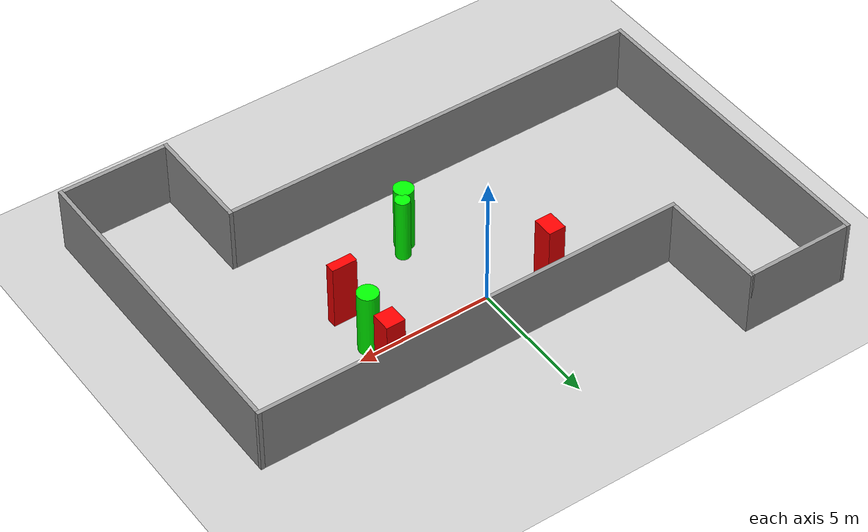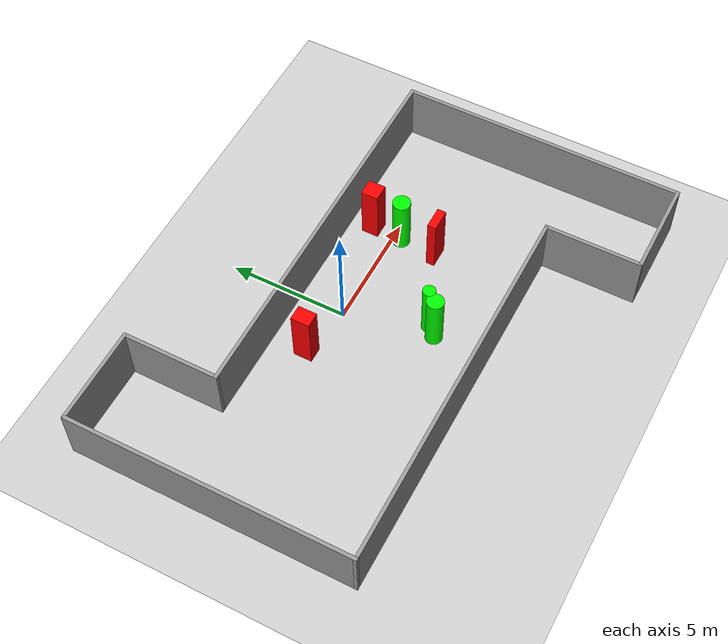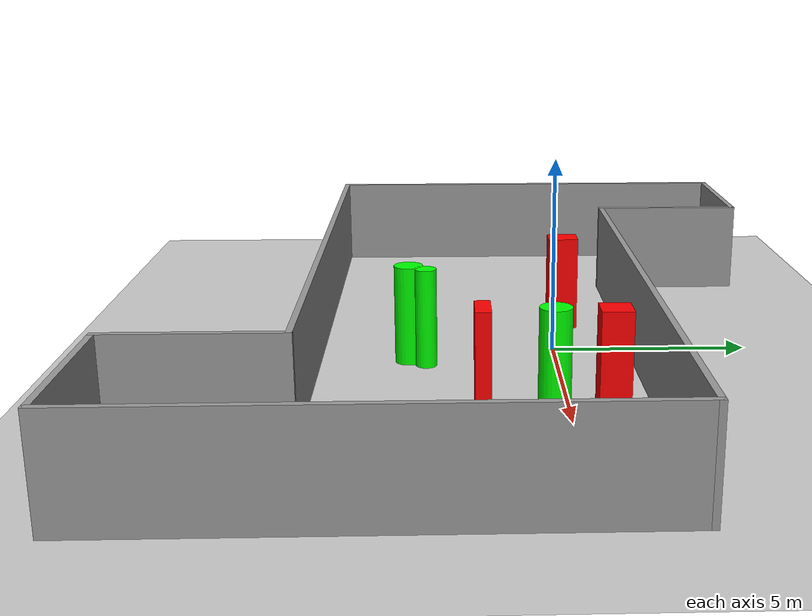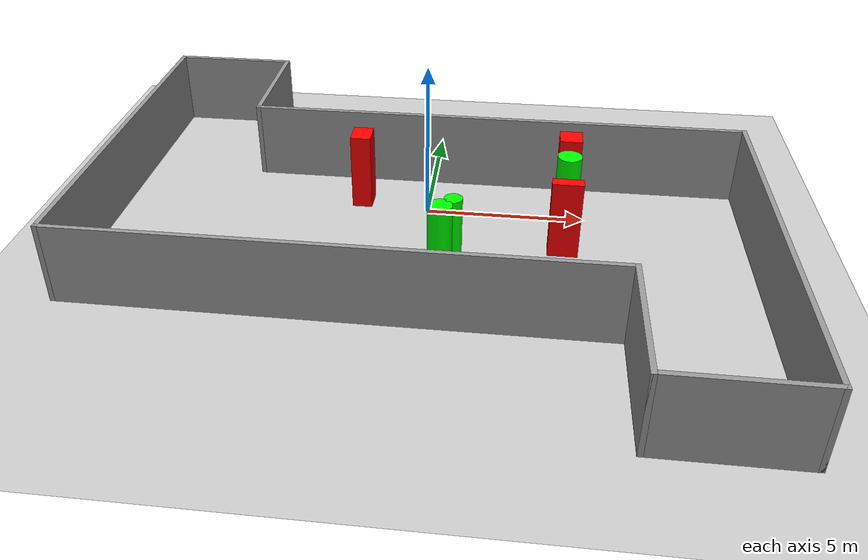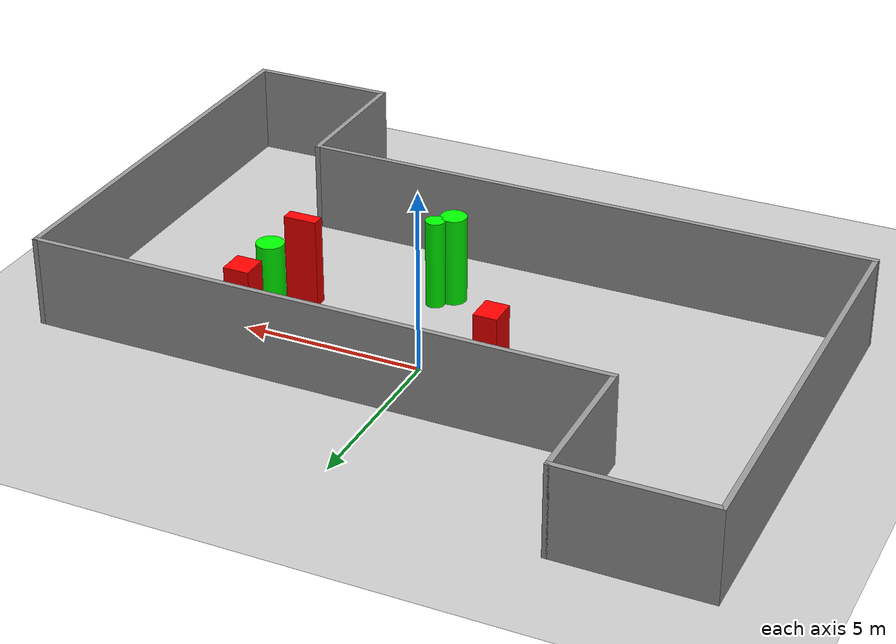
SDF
<sdf version="1.7">
 <world name="default">
  <light name="sun" type="directional">
   <pose>0 0 10 0 -0 0</pose>
   <diffuse>0.8 0.8 0.8 1</diffuse>
   <specular>0.2 0.2 0.2 1</specular>
   <attenuation>
    <range>1000</range>
    <constant>0.9</constant>
    <linear>0.01</linear>
    <quadratic>0.001</quadratic>
   </attenuation>
   <direction>-0.5 0.1 -0.9</direction>
   <spot><inner_angle>0</inner_angle><outer_angle>0</outer_angle><falloff>0</falloff></spot>
  </light>
  <model name="ground_plane">
   <static>1</static>
   <link name="link">
    <collision name="collision">
     <geometry><plane><normal>0 0 1</normal><size>100 100</size></plane></geometry>
     <surface>
      <contact><collide_bitmask>65535</collide_bitmask></contact>
      <friction><ode><mu>100</mu><mu2>50</mu2></ode></friction>
     </surface>
    </collision>
    <visual name="visual">
     <cast_shadows>0</cast_shadows>
     <geometry><plane><normal>0 0 1</normal><size>100 100</size></plane></geometry>
     <material>
      <script><uri>file://media/materials/scripts/gazebo.material</uri><name>Gazebo/Grey</name></script>
     </material>
    </visual>
   </link>
  </model>
  <gravity>0 0 -9.8</gravity>
  <magnetic_field>6e-06 2.3e-05 -4.2e-05</magnetic_field>
  <atmosphere type="adiabatic"/>
  <physics type="ode">
   <max_step_size>0.001</max_step_size>
   <real_time_factor>1</real_time_factor>
   <real_time_update_rate>1000</real_time_update_rate>
  </physics>
  <scene><ambient>0.4 0.4 0.4 1</ambient><background>0.7 0.7 0.7 1</background><shadows>1</shadows></scene>
  <spherical_coordinates>
   <surface_model>EARTH_WGS84</surface_model>
   <latitude_deg>0</latitude_deg>
   <longitude_deg>0</longitude_deg>
   <elevation>0</elevation>
   <heading_deg>0</heading_deg>
  </spherical_coordinates>
  <model name="my_base_walls">
   <link name="Wall_13">
    <collision name="Wall_13_Collision">
     <geometry><box><size>12.15 0.15 2.5</size></box></geometry>
     <pose>0 0 1.25 0 -0 0</pose>
    </collision>
    <visual name="Wall_13_Visual">
     <pose>0 0 1.25 0 -0 0</pose>
     <geometry><box><size>12.15 0.15 2.5</size></box></geometry>
     <material>
      <script><uri>file://media/materials/scripts/gazebo.material</uri><name>Gazebo/Grey</name></script>
      <ambient>1 1 1 1</ambient>
     </material>
     <meta><layer>0</layer></meta>
    </visual>
    <pose>10 -2 0 0 -0 1.5708</pose>
   </link>
   <link name="Wall_15">
    <collision name="Wall_15_Collision">
     <geometry><box><size>16.15 0.15 2.5</size></box></geometry>
     <pose>0 0 1.25 0 -0 0</pose>
    </collision>
    <visual name="Wall_15_Visual">
     <pose>0 0 1.25 0 -0 0</pose>
     <geometry><box><size>16.15 0.15 2.5</size></box></geometry>
     <material>
      <script><uri>file://media/materials/scripts/gazebo.material</uri><name>Gazebo/Grey</name></script>
      <ambient>1 1 1 1</ambient>
     </material>
     <meta><layer>0</layer></meta>
    </visual>
    <pose>2 4 0 0 -0 3.14159</pose>
   </link>
   <link name="Wall_17">
    <collision name="Wall_17_Collision">
     <geometry><box><size>4.15 0.15 2.5</size></box></geometry>
     <pose>0 0 1.25 0 -0 0</pose>
    </collision>
    <visual name="Wall_17_Visual">
     <pose>0 0 1.25 0 -0 0</pose>
     <geometry><box><size>4.15 0.15 2.5</size></box></geometry>
     <material>
      <script><uri>file://media/materials/scripts/gazebo.material</uri><name>Gazebo/Grey</name></script>
      <ambient>1 1 1 1</ambient>
     </material>
     <meta><layer>0</layer></meta>
    </visual>
    <pose>6 -6 0 0 -0 -1.5708</pose>
   </link>
   <link name="Wall_19">
    <collision name="Wall_19_Collision">
     <geometry><box><size>12.15 0.15 2.5</size></box></geometry>
     <pose>0 0 1.25 0 -0 0</pose>
    </collision>
    <visual name="Wall_19_Visual">
     <pose>0 0 1.25 0 -0 0</pose>
     <geometry><box><size>12.15 0.15 2.5</size></box></geometry>
     <material>
      <script><uri>file://media/materials/scripts/gazebo.material</uri><name>Gazebo/Grey</name></script>
      <ambient>1 1 1 1</ambient>
     </material>
     <meta><layer>0</layer></meta>
    </visual>
    <pose>-10 2 0 0 -0 1.5708</pose>
   </link>
   <link name="Wall_21">
    <collision name="Wall_21_Collision">
     <geometry><box><size>4.15 0.15 2.5</size></box></geometry>
     <pose>0 0 1.25 0 -0 0</pose>
    </collision>
    <visual name="Wall_21_Visual">
     <pose>0 0 1.25 0 -0 0</pose>
     <geometry><box><size>4.15 0.15 2.5</size></box></geometry>
     <material>
      <script><uri>file://media/materials/scripts/gazebo.material</uri><name>Gazebo/Grey</name></script>
      <ambient>1 1 1 1</ambient>
     </material>
     <meta><layer>0</layer></meta>
    </visual>
    <pose>-8 8 0 0 -0 0</pose>
   </link>
   <link name="Wall_23">
    <collision name="Wall_23_Collision">
     <geometry><box><size>4.15 0.15 2.5</size></box></geometry>
     <pose>0 0 1.25 0 -0 0</pose>
    </collision>
    <visual name="Wall_23_Visual">
     <pose>0 0 1.25 0 -0 0</pose>
     <geometry><box><size>4.15 0.15 2.5</size></box></geometry>
     <material>
      <script><uri>file://media/materials/scripts/gazebo.material</uri><name>Gazebo/Grey</name></script>
      <ambient>1 1 1 1</ambient>
     </material>
     <meta><layer>0</layer></meta>
    </visual>
    <pose>-6 6 0 0 -0 -1.5708</pose>
   </link>
   <link name="Wall_25">
    <collision name="Wall_25_Collision">
     <geometry><box><size>4.15 0.15 2.5</size></box></geometry>
     <pose>0 0 1.25 0 -0 0</pose>
    </collision>
    <visual name="Wall_25_Visual">
     <pose>0 0 1.25 0 -0 0</pose>
     <geometry><box><size>4.15 0.15 2.5</size></box></geometry>
     <material>
      <script><uri>file://media/materials/scripts/gazebo.material</uri><name>Gazebo/Grey</name></script>
      <ambient>1 1 1 1</ambient>
     </material>
     <meta><layer>0</layer></meta>
    </visual>
    <pose>8 -8 0 0 -0 0</pose>
   </link>
   <link name="Wall_9">
    <collision name="Wall_9_Collision">
     <geometry><box><size>16.15 0.15 2.5</size></box></geometry>
     <pose>0 0 1.25 0 -0 0</pose>
    </collision>
    <visual name="Wall_9_Visual">
     <pose>0 0 1.25 0 -0 0</pose>
     <geometry><box><size>16.15 0.15 2.5</size></box></geometry>
     <material>
      <script><uri>file://media/materials/scripts/gazebo.material</uri><name>Gazebo/Grey</name></script>
      <ambient>1 1 1 1</ambient>
     </material>
     <meta><layer>0</layer></meta>
    </visual>
    <pose>-2 -4 0 0 -0 3.14159</pose>
   </link>
   <static>1</static>
   <pose>-0 -2 0 0 -0 0</pose>
  </model>
  <model name="cylinder1">
   <static>1</static>
   <link name="link">
    <inertial>
     <mass>1</mass>
     <inertia><ixx>0.5</ixx><ixy>0</ixy><ixz>0</ixz><iyy>0.5</iyy><iyz>0</iyz><izz>1</izz></inertia>
    </inertial>
    <collision name="collision">
     <geometry><cylinder><radius>0.26686412401197857</radius><length>2.5</length></cylinder></geometry>
    </collision>
    <visual name="visual">
     <geometry><cylinder><radius>0.26686412401197857</radius><length>2.5</length></cylinder></geometry>
     <material>
      <ambient>0 1 0 1</ambient>
      <diffuse>0 1 0 1</diffuse>
      <specular>0.1 0.1 0.1 1</specular>
      <emissive>0 0 0 0</emissive>
     </material>
    </visual>
   </link>
   <pose>1.0806278983044288 -3.2635283136129773 1.25 0 0 0</pose>
  </model>
  <model name="cylinder2">
   <static>1</static>
   <link name="link">
    <inertial>
     <mass>1</mass>
     <inertia><ixx>0.5</ixx><ixy>0</ixy><ixz>0</ixz><iyy>0.5</iyy><iyz>0</iyz><izz>1</izz></inertia>
    </inertial>
    <collision name="collision">
     <geometry><cylinder><radius>0.3590106706994831</radius><length>2.5</length></cylinder></geometry>
    </collision>
    <visual name="visual">
     <geometry><cylinder><radius>0.3590106706994831</radius><length>2.5</length></cylinder></geometry>
     <material>
      <ambient>0 1 0 1</ambient>
      <diffuse>0 1 0 1</diffuse>
      <specular>0.1 0.1 0.1 1</specular>
      <emissive>0 0 0 0</emissive>
     </material>
    </visual>
   </link>
   <pose>0.7406492253552797 -3.6945541478052695 1.25 0 0 0</pose>
  </model>
  <model name="cylinder3">
   <static>1</static>
   <link name="link">
    <inertial>
     <mass>1</mass>
     <inertia><ixx>0.5</ixx><ixy>0</ixy><ixz>0</ixz><iyy>0.5</iyy><iyz>0</iyz><izz>1</izz></inertia>
    </inertial>
    <collision name="collision">
     <geometry><cylinder><radius>0.3762498307123102</radius><length>2.5</length></cylinder></geometry>
    </collision>
    <visual name="visual">
     <geometry><cylinder><radius>0.3762498307123102</radius><length>2.5</length></cylinder></geometry>
     <material>
      <ambient>0 1 0 1</ambient>
      <diffuse>0 1 0 1</diffuse>
      <specular>0.1 0.1 0.1 1</specular>
      <emissive>0 0 0 0</emissive>
     </material>
    </visual>
   </link>
   <pose>4.412027882542027 -0.3608988427129498 1.25 0 0 0</pose>
  </model>
  <model name="box1">
   <static>1</static>
   <link name="link">
    <inertial>
     <mass>1</mass>
     <inertia><ixx>0.083</ixx><ixy>0</ixy><ixz>0</ixz><iyy>0.083</iyy><iyz>0</iyz><izz>0.083</izz></inertia>
    </inertial>
    <collision name="collision">
     <geometry><box><size>0.9274581331035641 0.3653764281853498 2.5</size></box></geometry>
    </collision>
    <visual name="visual">
     <geometry><box><size>0.9274581331035641 0.3653764281853498 2.5</size></box></geometry>
     <material>
      <ambient>1 0 0 1</ambient>
      <diffuse>1 0 0 1</diffuse>
      <specular>0.1 0.1 0.1 1</specular>
      <emissive>0 0 0 0</emissive>
     </material>
    </visual>
    <sensor name="my_contact" type="contact">
     <contact><collision>box_collision</collision><topic>__default_topic__</topic></contact>
    </sensor>
   </link>
   <pose>4.330740098375177 -1.9692529804404213 1.25 0 0 0</pose>
  </model>
  <model name="box2">
   <static>1</static>
   <link name="link">
    <inertial>
     <mass>1</mass>
     <inertia><ixx>0.083</ixx><ixy>0</ixy><ixz>0</ixz><iyy>0.083</iyy><iyz>0</iyz><izz>0.083</izz></inertia>
    </inertial>
    <collision name="collision">
     <geometry><box><size>0.7080162529485836 0.7248115705420441 2.5</size></box></geometry>
    </collision>
    <visual name="visual">
     <geometry><box><size>0.7080162529485836 0.7248115705420441 2.5</size></box></geometry>
     <material>
      <ambient>1 0 0 1</ambient>
      <diffuse>1 0 0 1</diffuse>
      <specular>0.1 0.1 0.1 1</specular>
      <emissive>0 0 0 0</emissive>
     </material>
    </visual>
    <sensor name="my_contact" type="contact">
     <contact><collision>box_collision</collision><topic>__default_topic__</topic></contact>
    </sensor>
   </link>
   <pose>4.4757967523663 0.9561468722158466 1.25 0 0 0</pose>
  </model>
  <model name="box3">
   <static>1</static>
   <link name="link">
    <inertial>
     <mass>1</mass>
     <inertia><ixx>0.083</ixx><ixy>0</ixy><ixz>0</ixz><iyy>0.083</iyy><iyz>0</iyz><izz>0.083</izz></inertia>
    </inertial>
    <collision name="collision">
     <geometry><box><size>0.6385849564236473 0.7907573268496851 2.5</size></box></geometry>
    </collision>
    <visual name="visual">
     <geometry><box><size>0.6385849564236473 0.7907573268496851 2.5</size></box></geometry>
     <material>
      <ambient>1 0 0 1</ambient>
      <diffuse>1 0 0 1</diffuse>
      <specular>0.1 0.1 0.1 1</specular>
      <emissive>0 0 0 0</emissive>
     </material>
    </visual>
    <sensor name="my_contact" type="contact">
     <contact><collision>box_collision</collision><topic>__default_topic__</topic></contact>
    </sensor>
   </link>
   <pose>-2.1776759416808558 0.4356189779087236 1.25 0 0 0</pose>
  </model>
 </world>
</sdf>
